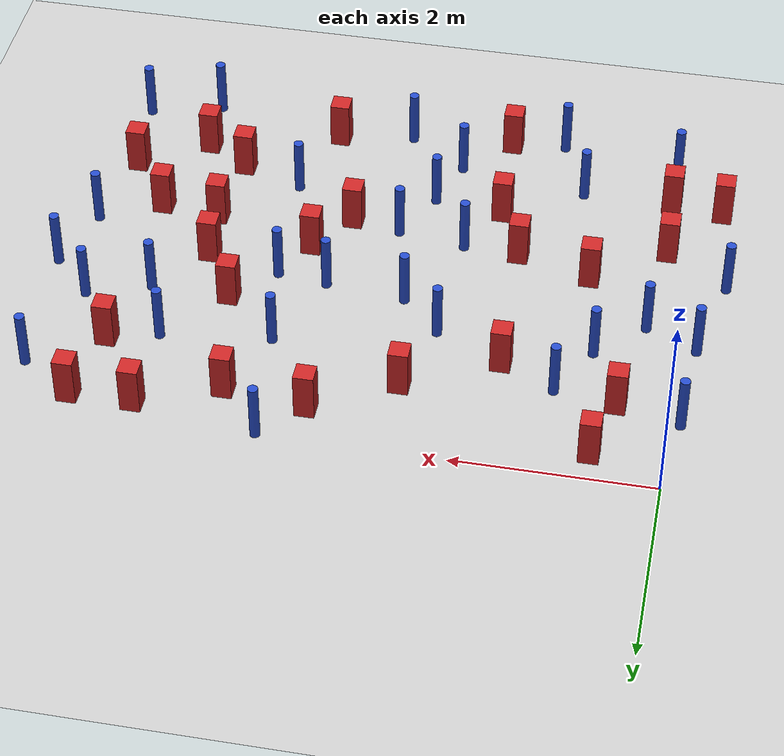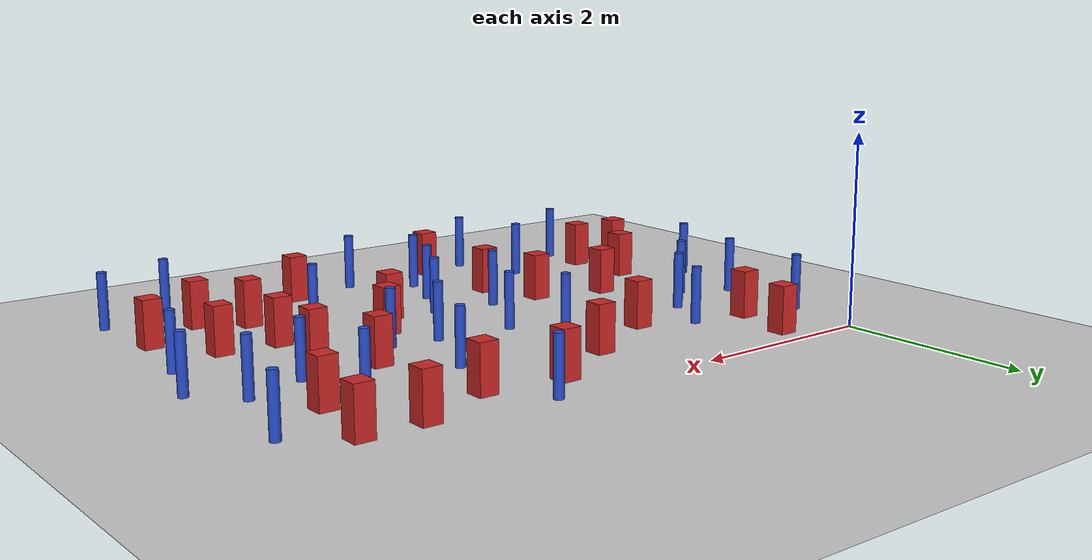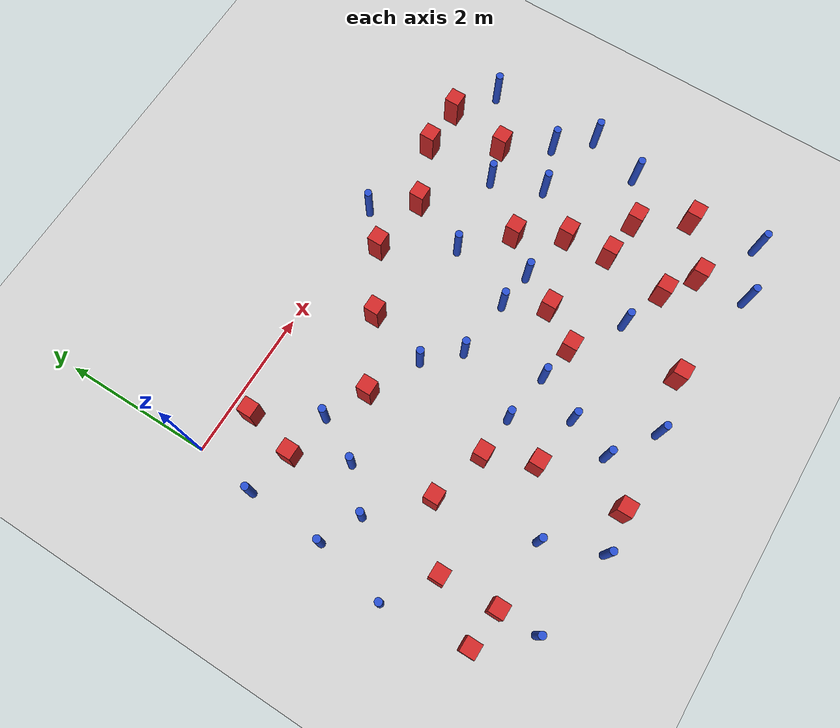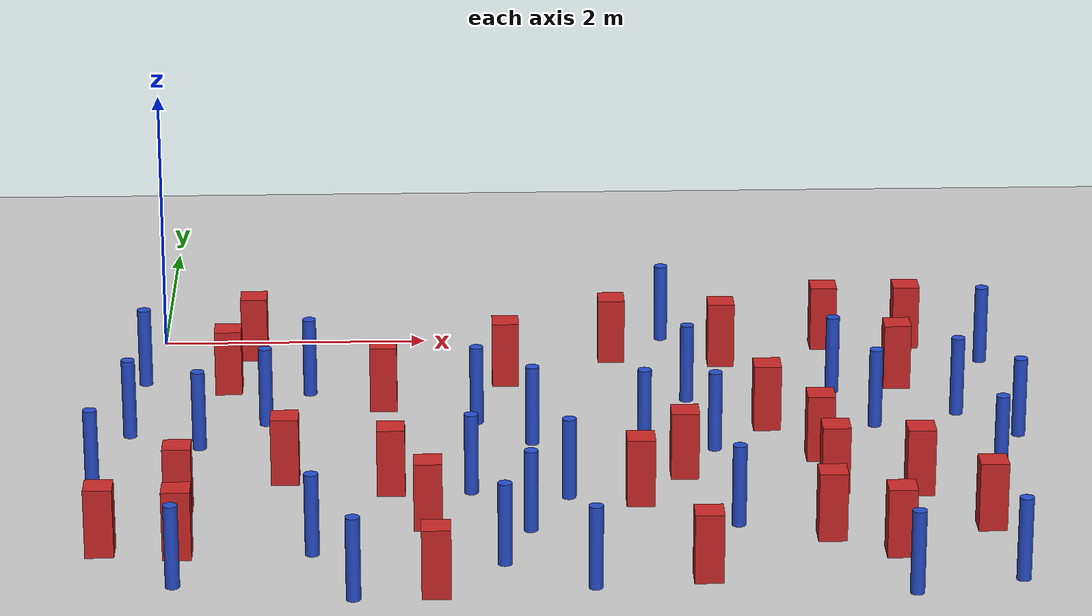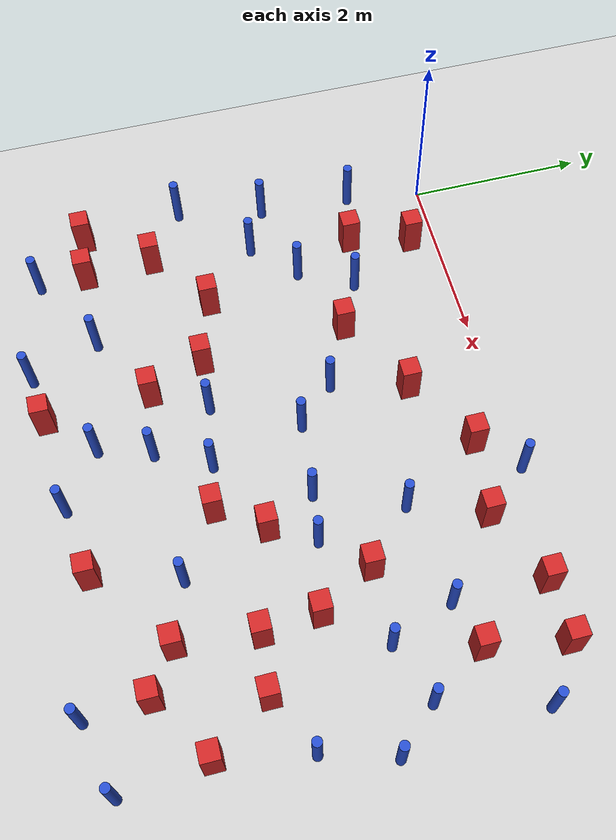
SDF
<sdf version="1.6">
 <world name="default">
  <model name="ground_plane">
   <static>1</static>
   <link name="link">
    <collision name="collision">
     <geometry><plane><normal>0 0 1</normal><size>100 100</size></plane></geometry>
     <surface><friction><ode><mu>100</mu><mu2>50</mu2></ode></friction></surface>
    </collision>
    <visual name="visual">
     <cast_shadows>0</cast_shadows>
     <geometry><plane><normal>0 0 1</normal><size>100 100</size></plane></geometry>
     <material>
      <ambient>1.0 1.0 1.0 1.0</ambient>
      <diffuse>0.8 0.8 0.8 1.0</diffuse>
      <specular>0.01 0.01 0.01 1.000000</specular>
     </material>
    </visual>
   </link>
  </model>
  <model name="NamedLocations">
   <static>true</static>
   <link name="DefaultStart"><pose>8.5 0 0 0 0 3.14</pose></link>
  </model>
  <model name="pole_obstacle0">
   <static>true</static>
   <pose>3.60144570011 -2.19980327123 7.38925637345e-09 -8.47170692798e-08 1.24976764939e-08 -1.74513093025e-07</pose>
   <link name="link">
    <pose>0 0 0.3 0 -0 0</pose>
    <inertial>
     <mass>1</mass>
     <inertia><ixx>0.145833</ixx><ixy>0</ixy><ixz>0</ixz><iyy>0.145833</iyy><iyz>0</iyz><izz>0.125</izz></inertia>
    </inertial>
    <collision name="collision">
     <geometry><cylinder><radius>0.05</radius><length>.6</length></cylinder></geometry>
    </collision>
    <visual name="visual">
     <geometry><cylinder><radius>0.05</radius><length>.6</length></cylinder></geometry>
     <material>
      <script><name>Gazebo/Blue</name><uri>file://media/materials/scripts/gazebo.material</uri></script>
     </material>
    </visual>
   </link>
  </model>
  <model name="square_post_obstacle0">
   <static>true</static>
   <pose>2.61286782644 -0.887590461791 1.91545236811e-07 -7.35059704564e-06 1.12565212e-07 2.39332434364e-05</pose>
   <link name="link">
    <pose>0 0 0.25 0 -0 0</pose>
    <inertial>
     <mass>100</mass>
     <inertia>
      <ixx>0.166667</ixx>
      <ixy>0</ixy>
      <ixz>0</ixz>
      <iyy>0.166667</iyy>
      <iyz>0</iyz>
      <izz>0.166667</izz>
     </inertia>
    </inertial>
    <collision name="collision"><geometry><box><size>.2 .2 .5</size></box></geometry></collision>
    <visual name="visual">
     <geometry><box><size>.2 .2 .5</size></box></geometry>
     <material>
      <script><name>Gazebo/Red</name><uri>file://media/materials/scripts/gazebo.material</uri></script>
     </material>
    </visual>
   </link>
  </model>
  <model name="pole_obstacle6">
   <static>true</static>
   <pose>-0.362529204652 -2.86343101517 7.38925637345e-09 -8.471706928e-08 1.24976765084e-08 -1.74513093017e-07</pose>
   <link name="link">
    <pose>0 0 0.3 0 -0 0</pose>
    <inertial>
     <mass>1</mass>
     <inertia><ixx>0.145833</ixx><ixy>0</ixy><ixz>0</ixz><iyy>0.145833</iyy><iyz>0</iyz><izz>0.125</izz></inertia>
    </inertial>
    <collision name="collision">
     <geometry><cylinder><radius>0.05</radius><length>.6</length></cylinder></geometry>
    </collision>
    <visual name="visual">
     <geometry><cylinder><radius>0.05</radius><length>.6</length></cylinder></geometry>
     <material>
      <script><name>Gazebo/Blue</name><uri>file://media/materials/scripts/gazebo.material</uri></script>
     </material>
    </visual>
   </link>
  </model>
  <model name="square_post_obstacle11">
   <static>true</static>
   <pose>5.94937893655 -3.72242752347 1.91545236811e-07 -7.35059704564e-06 1.12565212e-07 2.39332434364e-05</pose>
   <link name="link">
    <pose>0 0 0.25 0 -0 0</pose>
    <inertial>
     <mass>100</mass>
     <inertia>
      <ixx>0.166667</ixx>
      <ixy>0</ixy>
      <ixz>0</ixz>
      <iyy>0.166667</iyy>
      <iyz>0</iyz>
      <izz>0.166667</izz>
     </inertia>
    </inertial>
    <collision name="collision"><geometry><box><size>.2 .2 .5</size></box></geometry></collision>
    <visual name="visual">
     <geometry><box><size>.2 .2 .5</size></box></geometry>
     <material>
      <script><name>Gazebo/Red</name><uri>file://media/materials/scripts/gazebo.material</uri></script>
     </material>
    </visual>
   </link>
  </model>
  <model name="pole_obstacle14">
   <static>true</static>
   <pose>6.1337911628 -2.78618454168 7.38925637345e-09 -8.47170692798e-08 1.24976764937e-08 -1.74513093023e-07</pose>
   <link name="link">
    <pose>0 0 0.3 0 -0 0</pose>
    <inertial>
     <mass>1</mass>
     <inertia><ixx>0.145833</ixx><ixy>0</ixy><ixz>0</ixz><iyy>0.145833</iyy><iyz>0</iyz><izz>0.125</izz></inertia>
    </inertial>
    <collision name="collision">
     <geometry><cylinder><radius>0.05</radius><length>.6</length></cylinder></geometry>
    </collision>
    <visual name="visual">
     <geometry><cylinder><radius>0.05</radius><length>.6</length></cylinder></geometry>
     <material>
      <script><name>Gazebo/Blue</name><uri>file://media/materials/scripts/gazebo.material</uri></script>
     </material>
    </visual>
   </link>
  </model>
  <model name="pole_obstacle15">
   <static>true</static>
   <pose>2.78884678724 -2.11389978654 7.38925637345e-09 -8.47170692798e-08 1.24976764939e-08 -1.74513093025e-07</pose>
   <link name="link">
    <pose>0 0 0.3 0 -0 0</pose>
    <inertial>
     <mass>1</mass>
     <inertia><ixx>0.145833</ixx><ixy>0</ixy><ixz>0</ixz><iyy>0.145833</iyy><iyz>0</iyz><izz>0.125</izz></inertia>
    </inertial>
    <collision name="collision">
     <geometry><cylinder><radius>0.05</radius><length>.6</length></cylinder></geometry>
    </collision>
    <visual name="visual">
     <geometry><cylinder><radius>0.05</radius><length>.6</length></cylinder></geometry>
     <material>
      <script><name>Gazebo/Blue</name><uri>file://media/materials/scripts/gazebo.material</uri></script>
     </material>
    </visual>
   </link>
  </model>
  <model name="pole_obstacle24">
   <static>true</static>
   <pose>6.25698079322 -0.556815700277 7.38925637345e-09 -8.47170692799e-08 1.24976765038e-08 -1.74513093018e-07</pose>
   <link name="link">
    <pose>0 0 0.3 0 -0 0</pose>
    <inertial>
     <mass>1</mass>
     <inertia><ixx>0.145833</ixx><ixy>0</ixy><ixz>0</ixz><iyy>0.145833</iyy><iyz>0</iyz><izz>0.125</izz></inertia>
    </inertial>
    <collision name="collision">
     <geometry><cylinder><radius>0.05</radius><length>.6</length></cylinder></geometry>
    </collision>
    <visual name="visual">
     <geometry><cylinder><radius>0.05</radius><length>.6</length></cylinder></geometry>
     <material>
      <script><name>Gazebo/Blue</name><uri>file://media/materials/scripts/gazebo.material</uri></script>
     </material>
    </visual>
   </link>
  </model>
  <model name="pole_obstacle26">
   <static>true</static>
   <pose>1.14389443651 -1.09376211564 7.38925637345e-09 -8.471706928e-08 1.24976765079e-08 -1.74513093017e-07</pose>
   <link name="link">
    <pose>0 0 0.3 0 -0 0</pose>
    <inertial>
     <mass>1</mass>
     <inertia><ixx>0.145833</ixx><ixy>0</ixy><ixz>0</ixz><iyy>0.145833</iyy><iyz>0</iyz><izz>0.125</izz></inertia>
    </inertial>
    <collision name="collision">
     <geometry><cylinder><radius>0.05</radius><length>.6</length></cylinder></geometry>
    </collision>
    <visual name="visual">
     <geometry><cylinder><radius>0.05</radius><length>.6</length></cylinder></geometry>
     <material>
      <script><name>Gazebo/Blue</name><uri>file://media/materials/scripts/gazebo.material</uri></script>
     </material>
    </visual>
   </link>
  </model>
  <model name="pole_obstacle31">
   <static>true</static>
   <pose>-0.1556067481 -1.89457973966 7.38925637345e-09 -8.47170692799e-08 1.24976765103e-08 -1.74513093015e-07</pose>
   <link name="link">
    <pose>0 0 0.3 0 -0 0</pose>
    <inertial>
     <mass>1</mass>
     <inertia><ixx>0.145833</ixx><ixy>0</ixy><ixz>0</ixz><iyy>0.145833</iyy><iyz>0</iyz><izz>0.125</izz></inertia>
    </inertial>
    <collision name="collision">
     <geometry><cylinder><radius>0.05</radius><length>.6</length></cylinder></geometry>
    </collision>
    <visual name="visual">
     <geometry><cylinder><radius>0.05</radius><length>.6</length></cylinder></geometry>
     <material>
      <script><name>Gazebo/Blue</name><uri>file://media/materials/scripts/gazebo.material</uri></script>
     </material>
    </visual>
   </link>
  </model>
  <model name="square_post_obstacle28">
   <static>true</static>
   <pose>5.26815202918 -4.15877217027 1.91545236811e-07 -7.35059704564e-06 1.12565212e-07 2.39332434364e-05</pose>
   <link name="link">
    <pose>0 0 0.25 0 -0 0</pose>
    <inertial>
     <mass>100</mass>
     <inertia>
      <ixx>0.166667</ixx>
      <ixy>0</ixy>
      <ixz>0</ixz>
      <iyy>0.166667</iyy>
      <iyz>0</iyz>
      <izz>0.166667</izz>
     </inertia>
    </inertial>
    <collision name="collision"><geometry><box><size>.2 .2 .5</size></box></geometry></collision>
    <visual name="visual">
     <geometry><box><size>.2 .2 .5</size></box></geometry>
     <material>
      <script><name>Gazebo/Red</name><uri>file://media/materials/scripts/gazebo.material</uri></script>
     </material>
    </visual>
   </link>
  </model>
  <model name="pole_obstacle33">
   <static>true</static>
   <pose>2.33402150511 -3.02316918555 7.38925637345e-09 -8.47170692798e-08 1.24976764939e-08 -1.74513093025e-07</pose>
   <link name="link">
    <pose>0 0 0.3 0 -0 0</pose>
    <inertial>
     <mass>1</mass>
     <inertia><ixx>0.145833</ixx><ixy>0</ixy><ixz>0</ixz><iyy>0.145833</iyy><iyz>0</iyz><izz>0.125</izz></inertia>
    </inertial>
    <collision name="collision">
     <geometry><cylinder><radius>0.05</radius><length>.6</length></cylinder></geometry>
    </collision>
    <visual name="visual">
     <geometry><cylinder><radius>0.05</radius><length>.6</length></cylinder></geometry>
     <material>
      <script><name>Gazebo/Blue</name><uri>file://media/materials/scripts/gazebo.material</uri></script>
     </material>
    </visual>
   </link>
  </model>
  <model name="square_post_obstacle30">
   <static>true</static>
   <pose>0.532543714738 -0.995833007831 1.91545236811e-07 -7.35059704564e-06 1.12565212e-07 2.39332434364e-05</pose>
   <link name="link">
    <pose>0 0 0.25 0 -0 0</pose>
    <inertial>
     <mass>100</mass>
     <inertia>
      <ixx>0.166667</ixx>
      <ixy>0</ixy>
      <ixz>0</ixz>
      <iyy>0.166667</iyy>
      <iyz>0</iyz>
      <izz>0.166667</izz>
     </inertia>
    </inertial>
    <collision name="collision"><geometry><box><size>.2 .2 .5</size></box></geometry></collision>
    <visual name="visual">
     <geometry><box><size>.2 .2 .5</size></box></geometry>
     <material>
      <script><name>Gazebo/Red</name><uri>file://media/materials/scripts/gazebo.material</uri></script>
     </material>
    </visual>
   </link>
  </model>
  <model name="pole_obstacle39">
   <static>true</static>
   <pose>5.32210954722 -1.84432710329 7.38925637345e-09 -8.471706928e-08 1.24976765134e-08 -1.74513093015e-07</pose>
   <link name="link">
    <pose>0 0 0.3 0 -0 0</pose>
    <inertial>
     <mass>1</mass>
     <inertia><ixx>0.145833</ixx><ixy>0</ixy><ixz>0</ixz><iyy>0.145833</iyy><iyz>0</iyz><izz>0.125</izz></inertia>
    </inertial>
    <collision name="collision">
     <geometry><cylinder><radius>0.05</radius><length>.6</length></cylinder></geometry>
    </collision>
    <visual name="visual">
     <geometry><cylinder><radius>0.05</radius><length>.6</length></cylinder></geometry>
     <material>
      <script><name>Gazebo/Blue</name><uri>file://media/materials/scripts/gazebo.material</uri></script>
     </material>
    </visual>
   </link>
  </model>
  <model name="square_post_obstacle41">
   <static>true</static>
   <pose>1.69814109588 -1.36796030732 1.91545236811e-07 -7.35059704564e-06 1.12565212e-07 2.39332434364e-05</pose>
   <link name="link">
    <pose>0 0 0.25 0 -0 0</pose>
    <inertial>
     <mass>100</mass>
     <inertia>
      <ixx>0.166667</ixx>
      <ixy>0</ixy>
      <ixz>0</ixz>
      <iyy>0.166667</iyy>
      <iyz>0</iyz>
      <izz>0.166667</izz>
     </inertia>
    </inertial>
    <collision name="collision"><geometry><box><size>.2 .2 .5</size></box></geometry></collision>
    <visual name="visual">
     <geometry><box><size>.2 .2 .5</size></box></geometry>
     <material>
      <script><name>Gazebo/Red</name><uri>file://media/materials/scripts/gazebo.material</uri></script>
     </material>
    </visual>
   </link>
  </model>
  <model name="pole_obstacle58">
   <static>true</static>
   <pose>2.74053891384 -3.70323263554 7.38925637345e-09 -8.47170692798e-08 1.24976764939e-08 -1.74513093025e-07</pose>
   <link name="link">
    <pose>0 0 0.3 0 -0 0</pose>
    <inertial>
     <mass>1</mass>
     <inertia><ixx>0.145833</ixx><ixy>0</ixy><ixz>0</ixz><iyy>0.145833</iyy><iyz>0</iyz><izz>0.125</izz></inertia>
    </inertial>
    <collision name="collision">
     <geometry><cylinder><radius>0.05</radius><length>.6</length></cylinder></geometry>
    </collision>
    <visual name="visual">
     <geometry><cylinder><radius>0.05</radius><length>.6</length></cylinder></geometry>
     <material>
      <script><name>Gazebo/Blue</name><uri>file://media/materials/scripts/gazebo.material</uri></script>
     </material>
    </visual>
   </link>
  </model>
  <model name="square_post_obstacle45">
   <static>true</static>
   <pose>3.92238336715 -4.54807003613 1.91545236811e-07 -7.35059704564e-06 1.12565212e-07 2.39332434364e-05</pose>
   <link name="link">
    <pose>0 0 0.25 0 -0 0</pose>
    <inertial>
     <mass>100</mass>
     <inertia>
      <ixx>0.166667</ixx>
      <ixy>0</ixy>
      <ixz>0</ixz>
      <iyy>0.166667</iyy>
      <iyz>0</iyz>
      <izz>0.166667</izz>
     </inertia>
    </inertial>
    <collision name="collision"><geometry><box><size>.2 .2 .5</size></box></geometry></collision>
    <visual name="visual">
     <geometry><box><size>.2 .2 .5</size></box></geometry>
     <material>
      <script><name>Gazebo/Red</name><uri>file://media/materials/scripts/gazebo.material</uri></script>
     </material>
    </visual>
   </link>
  </model>
  <model name="pole_obstacle67">
   <static>true</static>
   <pose>5.95081435186 -1.62423827534 7.38925637345e-09 -8.471706928e-08 1.24976765134e-08 -1.74513093015e-07</pose>
   <link name="link">
    <pose>0 0 0.3 0 -0 0</pose>
    <inertial>
     <mass>1</mass>
     <inertia><ixx>0.145833</ixx><ixy>0</ixy><ixz>0</ixz><iyy>0.145833</iyy><iyz>0</iyz><izz>0.125</izz></inertia>
    </inertial>
    <collision name="collision">
     <geometry><cylinder><radius>0.05</radius><length>.6</length></cylinder></geometry>
    </collision>
    <visual name="visual">
     <geometry><cylinder><radius>0.05</radius><length>.6</length></cylinder></geometry>
     <material>
      <script><name>Gazebo/Blue</name><uri>file://media/materials/scripts/gazebo.material</uri></script>
     </material>
    </visual>
   </link>
  </model>
  <model name="pole_obstacle68">
   <static>true</static>
   <pose>1.2308352022 -4.0751339824 7.38925637345e-09 -8.47170692799e-08 1.24976765033e-08 -1.74513093018e-07</pose>
   <link name="link">
    <pose>0 0 0.3 0 -0 0</pose>
    <inertial>
     <mass>1</mass>
     <inertia><ixx>0.145833</ixx><ixy>0</ixy><ixz>0</ixz><iyy>0.145833</iyy><iyz>0</iyz><izz>0.125</izz></inertia>
    </inertial>
    <collision name="collision">
     <geometry><cylinder><radius>0.05</radius><length>.6</length></cylinder></geometry>
    </collision>
    <visual name="visual">
     <geometry><cylinder><radius>0.05</radius><length>.6</length></cylinder></geometry>
     <material>
      <script><name>Gazebo/Blue</name><uri>file://media/materials/scripts/gazebo.material</uri></script>
     </material>
    </visual>
   </link>
  </model>
  <model name="pole_obstacle70">
   <static>true</static>
   <pose>5.31056162662 -4.83025109066 7.38925637345e-09 -8.47170692796e-08 1.24976764786e-08 -1.74513093032e-07</pose>
   <link name="link">
    <pose>0 0 0.3 0 -0 0</pose>
    <inertial>
     <mass>1</mass>
     <inertia><ixx>0.145833</ixx><ixy>0</ixy><ixz>0</ixz><iyy>0.145833</iyy><iyz>0</iyz><izz>0.125</izz></inertia>
    </inertial>
    <collision name="collision">
     <geometry><cylinder><radius>0.05</radius><length>.6</length></cylinder></geometry>
    </collision>
    <visual name="visual">
     <geometry><cylinder><radius>0.05</radius><length>.6</length></cylinder></geometry>
     <material>
      <script><name>Gazebo/Blue</name><uri>file://media/materials/scripts/gazebo.material</uri></script>
     </material>
    </visual>
   </link>
  </model>
  <model name="square_post_obstacle62">
   <static>true</static>
   <pose>3.86388070812 -2.73161331151 1.91545236811e-07 -7.35059704564e-06 1.12565212e-07 2.39332434364e-05</pose>
   <link name="link">
    <pose>0 0 0.25 0 -0 0</pose>
    <inertial>
     <mass>100</mass>
     <inertia>
      <ixx>0.166667</ixx>
      <ixy>0</ixy>
      <ixz>0</ixz>
      <iyy>0.166667</iyy>
      <iyz>0</iyz>
      <izz>0.166667</izz>
     </inertia>
    </inertial>
    <collision name="collision"><geometry><box><size>.2 .2 .5</size></box></geometry></collision>
    <visual name="visual">
     <geometry><box><size>.2 .2 .5</size></box></geometry>
     <material>
      <script><name>Gazebo/Red</name><uri>file://media/materials/scripts/gazebo.material</uri></script>
     </material>
    </visual>
   </link>
  </model>
  <model name="pole_obstacle87">
   <static>true</static>
   <pose>5.06415200017 -1.16288098136 7.38925637345e-09 -8.471706928e-08 1.24976765134e-08 -1.74513093015e-07</pose>
   <link name="link">
    <pose>0 0 0.3 0 -0 0</pose>
    <inertial>
     <mass>1</mass>
     <inertia><ixx>0.145833</ixx><ixy>0</ixy><ixz>0</ixz><iyy>0.145833</iyy><iyz>0</iyz><izz>0.125</izz></inertia>
    </inertial>
    <collision name="collision">
     <geometry><cylinder><radius>0.05</radius><length>.6</length></cylinder></geometry>
    </collision>
    <visual name="visual">
     <geometry><cylinder><radius>0.05</radius><length>.6</length></cylinder></geometry>
     <material>
      <script><name>Gazebo/Blue</name><uri>file://media/materials/scripts/gazebo.material</uri></script>
     </material>
    </visual>
   </link>
  </model>
  <model name="square_post_obstacle80">
   <static>true</static>
   <pose>5.71271200632 -0.186465922184 1.91545236811e-07 -7.35059704564e-06 1.12565212e-07 2.39332434364e-05</pose>
   <link name="link">
    <pose>0 0 0.25 0 -0 0</pose>
    <inertial>
     <mass>100</mass>
     <inertia>
      <ixx>0.166667</ixx>
      <ixy>0</ixy>
      <ixz>0</ixz>
      <iyy>0.166667</iyy>
      <iyz>0</iyz>
      <izz>0.166667</izz>
     </inertia>
    </inertial>
    <collision name="collision"><geometry><box><size>.2 .2 .5</size></box></geometry></collision>
    <visual name="visual">
     <geometry><box><size>.2 .2 .5</size></box></geometry>
     <material>
      <script><name>Gazebo/Red</name><uri>file://media/materials/scripts/gazebo.material</uri></script>
     </material>
    </visual>
   </link>
  </model>
  <model name="square_post_obstacle84">
   <static>true</static>
   <pose>3.43013333071 -0.41389237887 1.91545236811e-07 -7.35059704564e-06 1.12565212e-07 2.39332434364e-05</pose>
   <link name="link">
    <pose>0 0 0.25 0 -0 0</pose>
    <inertial>
     <mass>100</mass>
     <inertia>
      <ixx>0.166667</ixx>
      <ixy>0</ixy>
      <ixz>0</ixz>
      <iyy>0.166667</iyy>
      <iyz>0</iyz>
      <izz>0.166667</izz>
     </inertia>
    </inertial>
    <collision name="collision"><geometry><box><size>.2 .2 .5</size></box></geometry></collision>
    <visual name="visual">
     <geometry><box><size>.2 .2 .5</size></box></geometry>
     <material>
      <script><name>Gazebo/Red</name><uri>file://media/materials/scripts/gazebo.material</uri></script>
     </material>
    </visual>
   </link>
  </model>
  <model name="pole_obstacle92">
   <static>true</static>
   <pose>3.83385436151 -0.00392142975081 7.38925637345e-09 -8.47170692801e-08 1.24976765133e-08 -1.74513093014e-07</pose>
   <link name="link">
    <pose>0 0 0.3 0 -0 0</pose>
    <inertial>
     <mass>1</mass>
     <inertia><ixx>0.145833</ixx><ixy>0</ixy><ixz>0</ixz><iyy>0.145833</iyy><iyz>0</iyz><izz>0.125</izz></inertia>
    </inertial>
    <collision name="collision">
     <geometry><cylinder><radius>0.05</radius><length>.6</length></cylinder></geometry>
    </collision>
    <visual name="visual">
     <geometry><cylinder><radius>0.05</radius><length>.6</length></cylinder></geometry>
     <material>
      <script><name>Gazebo/Blue</name><uri>file://media/materials/scripts/gazebo.material</uri></script>
     </material>
    </visual>
   </link>
  </model>
  <model name="pole_obstacle97">
   <static>true</static>
   <pose>2.38684590229 -1.70103109419 7.38925637345e-09 -8.471706928e-08 1.24976765152e-08 -1.74513093012e-07</pose>
   <link name="link">
    <pose>0 0 0.3 0 -0 0</pose>
    <inertial>
     <mass>1</mass>
     <inertia><ixx>0.145833</ixx><ixy>0</ixy><ixz>0</ixz><iyy>0.145833</iyy><iyz>0</iyz><izz>0.125</izz></inertia>
    </inertial>
    <collision name="collision">
     <geometry><cylinder><radius>0.05</radius><length>.6</length></cylinder></geometry>
    </collision>
    <visual name="visual">
     <geometry><cylinder><radius>0.05</radius><length>.6</length></cylinder></geometry>
     <material>
      <script><name>Gazebo/Blue</name><uri>file://media/materials/scripts/gazebo.material</uri></script>
     </material>
    </visual>
   </link>
  </model>
  <model name="pole_obstacle101">
   <static>true</static>
   <pose>0.364149704551 -2.14160095823 7.38925637345e-09 -8.471706928e-08 1.24976765084e-08 -1.74513093017e-07</pose>
   <link name="link">
    <pose>0 0 0.3 0 -0 0</pose>
    <inertial>
     <mass>1</mass>
     <inertia><ixx>0.145833</ixx><ixy>0</ixy><ixz>0</ixz><iyy>0.145833</iyy><iyz>0</iyz><izz>0.125</izz></inertia>
    </inertial>
    <collision name="collision">
     <geometry><cylinder><radius>0.05</radius><length>.6</length></cylinder></geometry>
    </collision>
    <visual name="visual">
     <geometry><cylinder><radius>0.05</radius><length>.6</length></cylinder></geometry>
     <material>
      <script><name>Gazebo/Blue</name><uri>file://media/materials/scripts/gazebo.material</uri></script>
     </material>
    </visual>
   </link>
  </model>
  <model name="square_post_obstacle101">
   <static>true</static>
   <pose>4.86235396881 -2.43173878452 1.91545236811e-07 -7.35059704564e-06 1.12565212e-07 2.39332434364e-05</pose>
   <link name="link">
    <pose>0 0 0.25 0 -0 0</pose>
    <inertial>
     <mass>100</mass>
     <inertia>
      <ixx>0.166667</ixx>
      <ixy>0</ixy>
      <ixz>0</ixz>
      <iyy>0.166667</iyy>
      <iyz>0</iyz>
      <izz>0.166667</izz>
     </inertia>
    </inertial>
    <collision name="collision"><geometry><box><size>.2 .2 .5</size></box></geometry></collision>
    <visual name="visual">
     <geometry><box><size>.2 .2 .5</size></box></geometry>
     <material>
      <script><name>Gazebo/Red</name><uri>file://media/materials/scripts/gazebo.material</uri></script>
     </material>
    </visual>
   </link>
  </model>
  <model name="square_post_obstacle102">
   <static>true</static>
   <pose>-0.22570997616 -3.99741353397 1.91545236811e-07 -7.35059704564e-06 1.12565212e-07 2.39332434364e-05</pose>
   <link name="link">
    <pose>0 0 0.25 0 -0 0</pose>
    <inertial>
     <mass>100</mass>
     <inertia>
      <ixx>0.166667</ixx>
      <ixy>0</ixy>
      <ixz>0</ixz>
      <iyy>0.166667</iyy>
      <iyz>0</iyz>
      <izz>0.166667</izz>
     </inertia>
    </inertial>
    <collision name="collision"><geometry><box><size>.2 .2 .5</size></box></geometry></collision>
    <visual name="visual">
     <geometry><box><size>.2 .2 .5</size></box></geometry>
     <material>
      <script><name>Gazebo/Red</name><uri>file://media/materials/scripts/gazebo.material</uri></script>
     </material>
    </visual>
   </link>
  </model>
  <model name="pole_obstacle117">
   <static>true</static>
   <pose>0.834157519099 -1.68637683852 7.38925637345e-09 -8.47170692799e-08 1.24976765033e-08 -1.7451309302e-07</pose>
   <link name="link">
    <pose>0 0 0.3 0 -0 0</pose>
    <inertial>
     <mass>1</mass>
     <inertia><ixx>0.145833</ixx><ixy>0</ixy><ixz>0</ixz><iyy>0.145833</iyy><iyz>0</iyz><izz>0.125</izz></inertia>
    </inertial>
    <collision name="collision">
     <geometry><cylinder><radius>0.05</radius><length>.6</length></cylinder></geometry>
    </collision>
    <visual name="visual">
     <geometry><cylinder><radius>0.05</radius><length>.6</length></cylinder></geometry>
     <material>
      <script><name>Gazebo/Blue</name><uri>file://media/materials/scripts/gazebo.material</uri></script>
     </material>
    </visual>
   </link>
  </model>
  <model name="pole_obstacle122">
   <static>true</static>
   <pose>6.05520968897 -4.63104893544 7.38925637345e-09 -8.47170692796e-08 1.24976764786e-08 -1.74513093032e-07</pose>
   <link name="link">
    <pose>0 0 0.3 0 -0 0</pose>
    <inertial>
     <mass>1</mass>
     <inertia><ixx>0.145833</ixx><ixy>0</ixy><ixz>0</ixz><iyy>0.145833</iyy><iyz>0</iyz><izz>0.125</izz></inertia>
    </inertial>
    <collision name="collision">
     <geometry><cylinder><radius>0.05</radius><length>.6</length></cylinder></geometry>
    </collision>
    <visual name="visual">
     <geometry><cylinder><radius>0.05</radius><length>.6</length></cylinder></geometry>
     <material>
      <script><name>Gazebo/Blue</name><uri>file://media/materials/scripts/gazebo.material</uri></script>
     </material>
    </visual>
   </link>
  </model>
  <model name="pole_obstacle123">
   <static>true</static>
   <pose>3.96126376376 -1.30095408163 7.38925637345e-09 -8.471706928e-08 1.24976765168e-08 -1.74513093013e-07</pose>
   <link name="link">
    <pose>0 0 0.3 0 -0 0</pose>
    <inertial>
     <mass>1</mass>
     <inertia><ixx>0.145833</ixx><ixy>0</ixy><ixz>0</ixz><iyy>0.145833</iyy><iyz>0</iyz><izz>0.125</izz></inertia>
    </inertial>
    <collision name="collision">
     <geometry><cylinder><radius>0.05</radius><length>.6</length></cylinder></geometry>
    </collision>
    <visual name="visual">
     <geometry><cylinder><radius>0.05</radius><length>.6</length></cylinder></geometry>
     <material>
      <script><name>Gazebo/Blue</name><uri>file://media/materials/scripts/gazebo.material</uri></script>
     </material>
    </visual>
   </link>
  </model>
  <model name="pole_obstacle126">
   <static>true</static>
   <pose>3.02463720056 -3.1276338512 7.38925637345e-09 -8.47170692798e-08 1.24976764939e-08 -1.74513093025e-07</pose>
   <link name="link">
    <pose>0 0 0.3 0 -0 0</pose>
    <inertial>
     <mass>1</mass>
     <inertia><ixx>0.145833</ixx><ixy>0</ixy><ixz>0</ixz><iyy>0.145833</iyy><iyz>0</iyz><izz>0.125</izz></inertia>
    </inertial>
    <collision name="collision">
     <geometry><cylinder><radius>0.05</radius><length>.6</length></cylinder></geometry>
    </collision>
    <visual name="visual">
     <geometry><cylinder><radius>0.05</radius><length>.6</length></cylinder></geometry>
     <material>
      <script><name>Gazebo/Blue</name><uri>file://media/materials/scripts/gazebo.material</uri></script>
     </material>
    </visual>
   </link>
  </model>
  <model name="pole_obstacle127">
   <static>true</static>
   <pose>3.15442268876 -4.68242350926 7.38925637345e-09 -8.47170692798e-08 1.24976765033e-08 -1.74513093019e-07</pose>
   <link name="link">
    <pose>0 0 0.3 0 -0 0</pose>
    <inertial>
     <mass>1</mass>
     <inertia><ixx>0.145833</ixx><ixy>0</ixy><ixz>0</ixz><iyy>0.145833</iyy><iyz>0</iyz><izz>0.125</izz></inertia>
    </inertial>
    <collision name="collision">
     <geometry><cylinder><radius>0.05</radius><length>.6</length></cylinder></geometry>
    </collision>
    <visual name="visual">
     <geometry><cylinder><radius>0.05</radius><length>.6</length></cylinder></geometry>
     <material>
      <script><name>Gazebo/Blue</name><uri>file://media/materials/scripts/gazebo.material</uri></script>
     </material>
    </visual>
   </link>
  </model>
  <model name="pole_obstacle129">
   <static>true</static>
   <pose>2.55040981119 -4.27313397019 7.38925637345e-09 -8.47170692798e-08 1.24976765033e-08 -1.74513093019e-07</pose>
   <link name="link">
    <pose>0 0 0.3 0 -0 0</pose>
    <inertial>
     <mass>1</mass>
     <inertia><ixx>0.145833</ixx><ixy>0</ixy><ixz>0</ixz><iyy>0.145833</iyy><iyz>0</iyz><izz>0.125</izz></inertia>
    </inertial>
    <collision name="collision">
     <geometry><cylinder><radius>0.05</radius><length>.6</length></cylinder></geometry>
    </collision>
    <visual name="visual">
     <geometry><cylinder><radius>0.05</radius><length>.6</length></cylinder></geometry>
     <material>
      <script><name>Gazebo/Blue</name><uri>file://media/materials/scripts/gazebo.material</uri></script>
     </material>
    </visual>
   </link>
  </model>
  <model name="square_post_obstacle128">
   <static>true</static>
   <pose>1.76468025854 -2.98240101949 1.91545236811e-07 -7.35059704564e-06 1.12565212e-07 2.39332434364e-05</pose>
   <link name="link">
    <pose>0 0 0.25 0 -0 0</pose>
    <inertial>
     <mass>100</mass>
     <inertia>
      <ixx>0.166667</ixx>
      <ixy>0</ixy>
      <ixz>0</ixz>
      <iyy>0.166667</iyy>
      <iyz>0</iyz>
      <izz>0.166667</izz>
     </inertia>
    </inertial>
    <collision name="collision"><geometry><box><size>.2 .2 .5</size></box></geometry></collision>
    <visual name="visual">
     <geometry><box><size>.2 .2 .5</size></box></geometry>
     <material>
      <script><name>Gazebo/Red</name><uri>file://media/materials/scripts/gazebo.material</uri></script>
     </material>
    </visual>
   </link>
  </model>
  <model name="square_post_obstacle132">
   <static>true</static>
   <pose>4.91709768495 -3.03180602669 1.91545236811e-07 -7.35059704564e-06 1.12565212e-07 2.39332434364e-05</pose>
   <link name="link">
    <pose>0 0 0.25 0 -0 0</pose>
    <inertial>
     <mass>100</mass>
     <inertia>
      <ixx>0.166667</ixx>
      <ixy>0</ixy>
      <ixz>0</ixz>
      <iyy>0.166667</iyy>
      <iyz>0</iyz>
      <izz>0.166667</izz>
     </inertia>
    </inertial>
    <collision name="collision"><geometry><box><size>.2 .2 .5</size></box></geometry></collision>
    <visual name="visual">
     <geometry><box><size>.2 .2 .5</size></box></geometry>
     <material>
      <script><name>Gazebo/Red</name><uri>file://media/materials/scripts/gazebo.material</uri></script>
     </material>
    </visual>
   </link>
  </model>
  <model name="square_post_obstacle146">
   <static>true</static>
   <pose>5.51603622668 -3.09050514542 1.91545236811e-07 -7.35059704564e-06 1.12565212e-07 2.39332434364e-05</pose>
   <link name="link">
    <pose>0 0 0.25 0 -0 0</pose>
    <inertial>
     <mass>100</mass>
     <inertia>
      <ixx>0.166667</ixx>
      <ixy>0</ixy>
      <ixz>0</ixz>
      <iyy>0.166667</iyy>
      <iyz>0</iyz>
      <izz>0.166667</izz>
     </inertia>
    </inertial>
    <collision name="collision"><geometry><box><size>.2 .2 .5</size></box></geometry></collision>
    <visual name="visual">
     <geometry><box><size>.2 .2 .5</size></box></geometry>
     <material>
      <script><name>Gazebo/Red</name><uri>file://media/materials/scripts/gazebo.material</uri></script>
     </material>
    </visual>
   </link>
  </model>
  <model name="square_post_obstacle148">
   <static>true</static>
   <pose>1.0082555552 -2.7584496452 1.91545236811e-07 -7.35059704564e-06 1.12565212e-07 2.39332434364e-05</pose>
   <link name="link">
    <pose>0 0 0.25 0 -0 0</pose>
    <inertial>
     <mass>100</mass>
     <inertia>
      <ixx>0.166667</ixx>
      <ixy>0</ixy>
      <ixz>0</ixz>
      <iyy>0.166667</iyy>
      <iyz>0</iyz>
      <izz>0.166667</izz>
     </inertia>
    </inertial>
    <collision name="collision"><geometry><box><size>.2 .2 .5</size></box></geometry></collision>
    <visual name="visual">
     <geometry><box><size>.2 .2 .5</size></box></geometry>
     <material>
      <script><name>Gazebo/Red</name><uri>file://media/materials/scripts/gazebo.material</uri></script>
     </material>
    </visual>
   </link>
  </model>
  <model name="square_post_obstacle152">
   <static>true</static>
   <pose>4.82077196438 -3.8673456932 1.91545236811e-07 -7.35059704564e-06 1.12565212e-07 2.39332434364e-05</pose>
   <link name="link">
    <pose>0 0 0.25 0 -0 0</pose>
    <inertial>
     <mass>100</mass>
     <inertia>
      <ixx>0.166667</ixx>
      <ixy>0</ixy>
      <ixz>0</ixz>
      <iyy>0.166667</iyy>
      <iyz>0</iyz>
      <izz>0.166667</izz>
     </inertia>
    </inertial>
    <collision name="collision"><geometry><box><size>.2 .2 .5</size></box></geometry></collision>
    <visual name="visual">
     <geometry><box><size>.2 .2 .5</size></box></geometry>
     <material>
      <script><name>Gazebo/Red</name><uri>file://media/materials/scripts/gazebo.material</uri></script>
     </material>
    </visual>
   </link>
  </model>
  <model name="square_post_obstacle159">
   <static>true</static>
   <pose>4.26383614425 -0.523824446429 1.91545236811e-07 -7.35059704564e-06 1.12565212e-07 2.39332434364e-05</pose>
   <link name="link">
    <pose>0 0 0.25 0 -0 0</pose>
    <inertial>
     <mass>100</mass>
     <inertia>
      <ixx>0.166667</ixx>
      <ixy>0</ixy>
      <ixz>0</ixz>
      <iyy>0.166667</iyy>
      <iyz>0</iyz>
      <izz>0.166667</izz>
     </inertia>
    </inertial>
    <collision name="collision"><geometry><box><size>.2 .2 .5</size></box></geometry></collision>
    <visual name="visual">
     <geometry><box><size>.2 .2 .5</size></box></geometry>
     <material>
      <script><name>Gazebo/Red</name><uri>file://media/materials/scripts/gazebo.material</uri></script>
     </material>
    </visual>
   </link>
  </model>
  <model name="square_post_obstacle163">
   <static>true</static>
   <pose>2.02632289145 -3.60460907208 1.91545236811e-07 -7.35059704564e-06 1.12565212e-07 2.39332434364e-05</pose>
   <link name="link">
    <pose>0 0 0.25 0 -0 0</pose>
    <inertial>
     <mass>100</mass>
     <inertia>
      <ixx>0.166667</ixx>
      <ixy>0</ixy>
      <ixz>0</ixz>
      <iyy>0.166667</iyy>
      <iyz>0</iyz>
      <izz>0.166667</izz>
     </inertia>
    </inertial>
    <collision name="collision"><geometry><box><size>.2 .2 .5</size></box></geometry></collision>
    <visual name="visual">
     <geometry><box><size>.2 .2 .5</size></box></geometry>
     <material>
      <script><name>Gazebo/Red</name><uri>file://media/materials/scripts/gazebo.material</uri></script>
     </material>
    </visual>
   </link>
  </model>
  <model name="pole_obstacle168">
   <static>true</static>
   <pose>6.35736073828 -2.05748422218 7.38925637345e-09 -8.47170692798e-08 1.24976764937e-08 -1.74513093023e-07</pose>
   <link name="link">
    <pose>0 0 0.3 0 -0 0</pose>
    <inertial>
     <mass>1</mass>
     <inertia><ixx>0.145833</ixx><ixy>0</ixy><ixz>0</ixz><iyy>0.145833</iyy><iyz>0</iyz><izz>0.125</izz></inertia>
    </inertial>
    <collision name="collision">
     <geometry><cylinder><radius>0.05</radius><length>.6</length></cylinder></geometry>
    </collision>
    <visual name="visual">
     <geometry><cylinder><radius>0.05</radius><length>.6</length></cylinder></geometry>
     <material>
      <script><name>Gazebo/Blue</name><uri>file://media/materials/scripts/gazebo.material</uri></script>
     </material>
    </visual>
   </link>
  </model>
  <model name="square_post_obstacle166">
   <static>true</static>
   <pose>5.07662061074 -0.185002357556 1.91545236811e-07 -7.35059704564e-06 1.12565212e-07 2.39332434364e-05</pose>
   <link name="link">
    <pose>0 0 0.25 0 -0 0</pose>
    <inertial>
     <mass>100</mass>
     <inertia>
      <ixx>0.166667</ixx>
      <ixy>0</ixy>
      <ixz>0</ixz>
      <iyy>0.166667</iyy>
      <iyz>0</iyz>
      <izz>0.166667</izz>
     </inertia>
    </inertial>
    <collision name="collision"><geometry><box><size>.2 .2 .5</size></box></geometry></collision>
    <visual name="visual">
     <geometry><box><size>.2 .2 .5</size></box></geometry>
     <material>
      <script><name>Gazebo/Red</name><uri>file://media/materials/scripts/gazebo.material</uri></script>
     </material>
    </visual>
   </link>
  </model>
  <model name="square_post_obstacle170">
   <static>true</static>
   <pose>5.56058735486 -1.02059815085 1.91545236811e-07 -7.35059704564e-06 1.12565212e-07 2.39332434364e-05</pose>
   <link name="link">
    <pose>0 0 0.25 0 -0 0</pose>
    <inertial>
     <mass>100</mass>
     <inertia>
      <ixx>0.166667</ixx>
      <ixy>0</ixy>
      <ixz>0</ixz>
      <iyy>0.166667</iyy>
      <iyz>0</iyz>
      <izz>0.166667</izz>
     </inertia>
    </inertial>
    <collision name="collision"><geometry><box><size>.2 .2 .5</size></box></geometry></collision>
    <visual name="visual">
     <geometry><box><size>.2 .2 .5</size></box></geometry>
     <material>
      <script><name>Gazebo/Red</name><uri>file://media/materials/scripts/gazebo.material</uri></script>
     </material>
    </visual>
   </link>
  </model>
  <model name="pole_obstacle174">
   <static>true</static>
   <pose>4.1924505796 -3.65229076363 7.38925637345e-09 -8.47170692798e-08 1.24976764937e-08 -1.74513093023e-07</pose>
   <link name="link">
    <pose>0 0 0.3 0 -0 0</pose>
    <inertial>
     <mass>1</mass>
     <inertia><ixx>0.145833</ixx><ixy>0</ixy><ixz>0</ixz><iyy>0.145833</iyy><iyz>0</iyz><izz>0.125</izz></inertia>
    </inertial>
    <collision name="collision">
     <geometry><cylinder><radius>0.05</radius><length>.6</length></cylinder></geometry>
    </collision>
    <visual name="visual">
     <geometry><cylinder><radius>0.05</radius><length>.6</length></cylinder></geometry>
     <material>
      <script><name>Gazebo/Blue</name><uri>file://media/materials/scripts/gazebo.material</uri></script>
     </material>
    </visual>
   </link>
  </model>
  <model name="pole_obstacle177">
   <static>true</static>
   <pose>4.11199042225 -2.26681699838 7.38925637345e-09 -8.47170692798e-08 1.24976764937e-08 -1.74513093023e-07</pose>
   <link name="link">
    <pose>0 0 0.3 0 -0 0</pose>
    <inertial>
     <mass>1</mass>
     <inertia><ixx>0.145833</ixx><ixy>0</ixy><ixz>0</ixz><iyy>0.145833</iyy><iyz>0</iyz><izz>0.125</izz></inertia>
    </inertial>
    <collision name="collision">
     <geometry><cylinder><radius>0.05</radius><length>.6</length></cylinder></geometry>
    </collision>
    <visual name="visual">
     <geometry><cylinder><radius>0.05</radius><length>.6</length></cylinder></geometry>
     <material>
      <script><name>Gazebo/Blue</name><uri>file://media/materials/scripts/gazebo.material</uri></script>
     </material>
    </visual>
   </link>
  </model>
  <model name="square_post_obstacle182">
   <static>true</static>
   <pose>0.27224596484 -3.28590038339 1.91545236811e-07 -7.35059704564e-06 1.12565212e-07 2.39332434364e-05</pose>
   <link name="link">
    <pose>0 0 0.25 0 -0 0</pose>
    <inertial>
     <mass>100</mass>
     <inertia>
      <ixx>0.166667</ixx>
      <ixy>0</ixy>
      <ixz>0</ixz>
      <iyy>0.166667</iyy>
      <iyz>0</iyz>
      <izz>0.166667</izz>
     </inertia>
    </inertial>
    <collision name="collision"><geometry><box><size>.2 .2 .5</size></box></geometry></collision>
    <visual name="visual">
     <geometry><box><size>.2 .2 .5</size></box></geometry>
     <material>
      <script><name>Gazebo/Red</name><uri>file://media/materials/scripts/gazebo.material</uri></script>
     </material>
    </visual>
   </link>
  </model>
  <model name="pole_obstacle183">
   <static>true</static>
   <pose>1.52489956217 -4.82614003397 7.38925637345e-09 -8.47170692799e-08 1.24976765033e-08 -1.74513093018e-07</pose>
   <link name="link">
    <pose>0 0 0.3 0 -0 0</pose>
    <inertial>
     <mass>1</mass>
     <inertia><ixx>0.145833</ixx><ixy>0</ixy><ixz>0</ixz><iyy>0.145833</iyy><iyz>0</iyz><izz>0.125</izz></inertia>
    </inertial>
    <collision name="collision">
     <geometry><cylinder><radius>0.05</radius><length>.6</length></cylinder></geometry>
    </collision>
    <visual name="visual">
     <geometry><cylinder><radius>0.05</radius><length>.6</length></cylinder></geometry>
     <material>
      <script><name>Gazebo/Blue</name><uri>file://media/materials/scripts/gazebo.material</uri></script>
     </material>
    </visual>
   </link>
  </model>
  <model name="pole_obstacle185">
   <static>true</static>
   <pose>0.301628856611 -4.58926888695 7.38925637345e-09 -8.471706928e-08 1.24976765079e-08 -1.74513093015e-07</pose>
   <link name="link">
    <pose>0 0 0.3 0 -0 0</pose>
    <inertial>
     <mass>1</mass>
     <inertia><ixx>0.145833</ixx><ixy>0</ixy><ixz>0</ixz><iyy>0.145833</iyy><iyz>0</iyz><izz>0.125</izz></inertia>
    </inertial>
    <collision name="collision">
     <geometry><cylinder><radius>0.05</radius><length>.6</length></cylinder></geometry>
    </collision>
    <visual name="visual">
     <geometry><cylinder><radius>0.05</radius><length>.6</length></cylinder></geometry>
     <material>
      <script><name>Gazebo/Blue</name><uri>file://media/materials/scripts/gazebo.material</uri></script>
     </material>
    </visual>
   </link>
  </model>
  <model name="square_post_obstacle187">
   <static>true</static>
   <pose>4.52050846328 -1.82997551491 1.91545236811e-07 -7.35059704564e-06 1.12565212e-07 2.39332434364e-05</pose>
   <link name="link">
    <pose>0 0 0.25 0 -0 0</pose>
    <inertial>
     <mass>100</mass>
     <inertia>
      <ixx>0.166667</ixx>
      <ixy>0</ixy>
      <ixz>0</ixz>
      <iyy>0.166667</iyy>
      <iyz>0</iyz>
      <izz>0.166667</izz>
     </inertia>
    </inertial>
    <collision name="collision"><geometry><box><size>.2 .2 .5</size></box></geometry></collision>
    <visual name="visual">
     <geometry><box><size>.2 .2 .5</size></box></geometry>
     <material>
      <script><name>Gazebo/Red</name><uri>file://media/materials/scripts/gazebo.material</uri></script>
     </material>
    </visual>
   </link>
  </model>
  <model name="square_post_obstacle194">
   <static>true</static>
   <pose>0.307598523342 -4.05365070736 1.91545236811e-07 -7.35059704564e-06 1.12565212e-07 2.39332434364e-05</pose>
   <link name="link">
    <pose>0 0 0.25 0 -0 0</pose>
    <inertial>
     <mass>100</mass>
     <inertia>
      <ixx>0.166667</ixx>
      <ixy>0</ixy>
      <ixz>0</ixz>
      <iyy>0.166667</iyy>
      <iyz>0</iyz>
      <izz>0.166667</izz>
     </inertia>
    </inertial>
    <collision name="collision"><geometry><box><size>.2 .2 .5</size></box></geometry></collision>
    <visual name="visual">
     <geometry><box><size>.2 .2 .5</size></box></geometry>
     <material>
      <script><name>Gazebo/Red</name><uri>file://media/materials/scripts/gazebo.material</uri></script>
     </material>
    </visual>
   </link>
  </model>
  <model name="pole_obstacle207">
   <static>true</static>
   <pose>-0.102633191936 -0.85114544522 7.38925637345e-09 -8.47170692799e-08 1.24976765043e-08 -1.74513093017e-07</pose>
   <link name="link">
    <pose>0 0 0.3 0 -0 0</pose>
    <inertial>
     <mass>1</mass>
     <inertia><ixx>0.145833</ixx><ixy>0</ixy><ixz>0</ixz><iyy>0.145833</iyy><iyz>0</iyz><izz>0.125</izz></inertia>
    </inertial>
    <collision name="collision">
     <geometry><cylinder><radius>0.05</radius><length>.6</length></cylinder></geometry>
    </collision>
    <visual name="visual">
     <geometry><cylinder><radius>0.05</radius><length>.6</length></cylinder></geometry>
     <material>
      <script><name>Gazebo/Blue</name><uri>file://media/materials/scripts/gazebo.material</uri></script>
     </material>
    </visual>
   </link>
  </model>
  <model name="square_post_obstacle217">
   <static>true</static>
   <pose>0.701031144504 -0.302615807419 1.91545236811e-07 -7.35059704564e-06 1.12565212e-07 2.39332434364e-05</pose>
   <link name="link">
    <pose>0 0 0.25 0 -0 0</pose>
    <inertial>
     <mass>100</mass>
     <inertia>
      <ixx>0.166667</ixx>
      <ixy>0</ixy>
      <ixz>0</ixz>
      <iyy>0.166667</iyy>
      <iyz>0</iyz>
      <izz>0.166667</izz>
     </inertia>
    </inertial>
    <collision name="collision"><geometry><box><size>.2 .2 .5</size></box></geometry></collision>
    <visual name="visual">
     <geometry><box><size>.2 .2 .5</size></box></geometry>
     <material>
      <script><name>Gazebo/Red</name><uri>file://media/materials/scripts/gazebo.material</uri></script>
     </material>
    </visual>
   </link>
  </model>
  <model name="square_post_obstacle219">
   <static>true</static>
   <pose>3.52563159445 -3.21853721036 1.91545236811e-07 -7.35059704564e-06 1.12565212e-07 2.39332434364e-05</pose>
   <link name="link">
    <pose>0 0 0.25 0 -0 0</pose>
    <inertial>
     <mass>100</mass>
     <inertia>
      <ixx>0.166667</ixx>
      <ixy>0</ixy>
      <ixz>0</ixz>
      <iyy>0.166667</iyy>
      <iyz>0</iyz>
      <izz>0.166667</izz>
     </inertia>
    </inertial>
    <collision name="collision"><geometry><box><size>.2 .2 .5</size></box></geometry></collision>
    <visual name="visual">
     <geometry><box><size>.2 .2 .5</size></box></geometry>
     <material>
      <script><name>Gazebo/Red</name><uri>file://media/materials/scripts/gazebo.material</uri></script>
     </material>
    </visual>
   </link>
  </model>
  <model name="square_post_obstacle221">
   <static>true</static>
   <pose>2.08145657576 -4.7499148146 1.91545236811e-07 -7.35059704564e-06 1.12565212e-07 2.39332434364e-05</pose>
   <link name="link">
    <pose>0 0 0.25 0 -0 0</pose>
    <inertial>
     <mass>100</mass>
     <inertia>
      <ixx>0.166667</ixx>
      <ixy>0</ixy>
      <ixz>0</ixz>
      <iyy>0.166667</iyy>
      <iyz>0</iyz>
      <izz>0.166667</izz>
     </inertia>
    </inertial>
    <collision name="collision"><geometry><box><size>.2 .2 .5</size></box></geometry></collision>
    <visual name="visual">
     <geometry><box><size>.2 .2 .5</size></box></geometry>
     <material>
      <script><name>Gazebo/Red</name><uri>file://media/materials/scripts/gazebo.material</uri></script>
     </material>
    </visual>
   </link>
  </model>
 </world>
</sdf>
